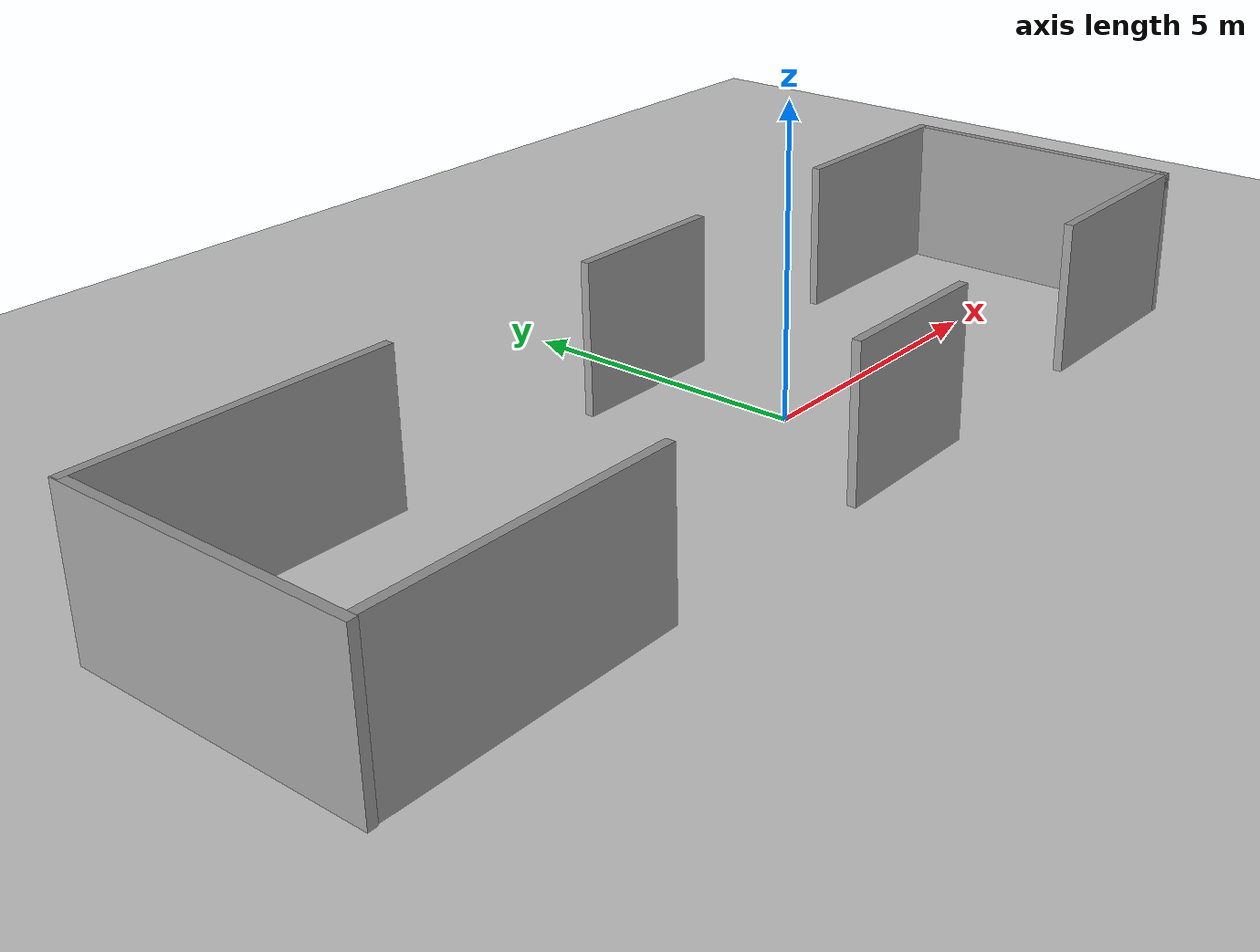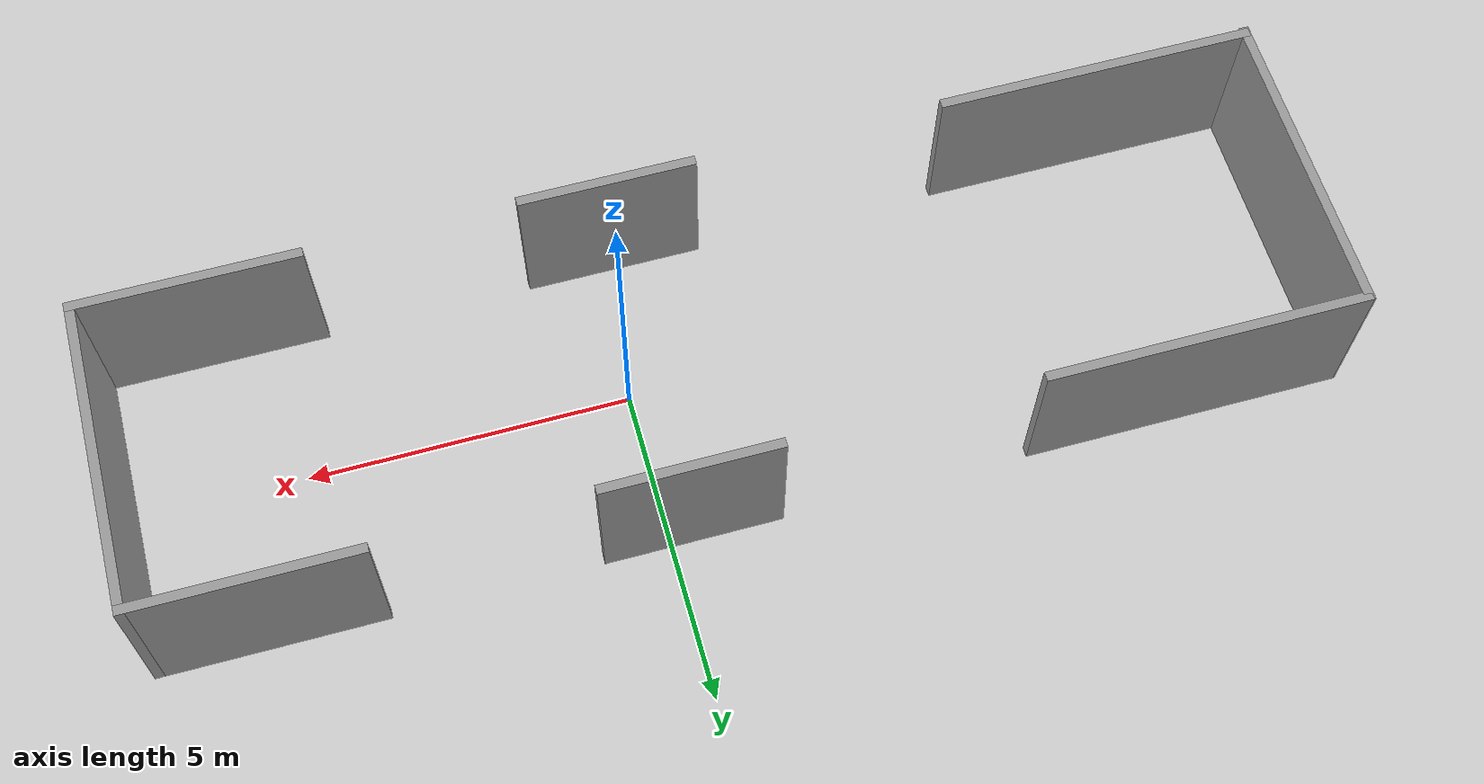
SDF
<sdf version="1.7">
 <world name="default">
  <light name="sun" type="directional">
   <pose>0 0 10 0 -0 0</pose>
   <diffuse>0.8 0.8 0.8 1</diffuse>
   <specular>0.2 0.2 0.2 1</specular>
   <attenuation>
    <range>1000</range>
    <constant>0.9</constant>
    <linear>0.01</linear>
    <quadratic>0.001</quadratic>
   </attenuation>
   <direction>-0.5 0.1 -0.9</direction>
   <spot><inner_angle>0</inner_angle><outer_angle>0</outer_angle><falloff>0</falloff></spot>
  </light>
  <model name="ground_plane">
   <static>1</static>
   <link name="link">
    <collision name="collision">
     <geometry><plane><normal>0 0 1</normal><size>100 100</size></plane></geometry>
     <surface>
      <contact><collide_bitmask>65535</collide_bitmask></contact>
      <friction><ode><mu>100</mu><mu2>50</mu2></ode></friction>
     </surface>
    </collision>
    <visual name="visual">
     <cast_shadows>0</cast_shadows>
     <geometry><plane><normal>0 0 1</normal><size>100 100</size></plane></geometry>
     <material>
      <script><uri>file://media/materials/scripts/gazebo.material</uri><name>Gazebo/Grey</name></script>
     </material>
    </visual>
   </link>
  </model>
  <gravity>0 0 -9.8</gravity>
  <magnetic_field>6e-06 2.3e-05 -4.2e-05</magnetic_field>
  <atmosphere type="adiabatic"/>
  <physics type="ode">
   <max_step_size>0.001</max_step_size>
   <real_time_factor>1</real_time_factor>
   <real_time_update_rate>1000</real_time_update_rate>
  </physics>
  <scene><ambient>0.4 0.4 0.4 1</ambient><background>0.7 0.7 0.7 1</background><shadows>1</shadows></scene>
  <spherical_coordinates>
   <surface_model>EARTH_WGS84</surface_model>
   <latitude_deg>0</latitude_deg>
   <longitude_deg>0</longitude_deg>
   <elevation>0</elevation>
   <heading_deg>0</heading_deg>
  </spherical_coordinates>
  <model name="Untitled">
   <pose>-1.42842 0.031631 0 0 -0 0</pose>
   <link name="Wall_10">
    <collision name="Wall_10_Collision">
     <geometry><box><size>3.5 0.15 2.5</size></box></geometry>
     <pose>0 0 1.25 0 -0 0</pose>
    </collision>
    <visual name="Wall_10_Visual">
     <pose>0 0 1.25 0 -0 0</pose>
     <geometry><box><size>3.5 0.15 2.5</size></box></geometry>
     <material>
      <script><uri>file://media/materials/scripts/gazebo.material</uri><name>Gazebo/Grey</name></script>
      <ambient>1 1 1 1</ambient>
     </material>
     <meta><layer>0</layer></meta>
    </visual>
    <pose>7.40396 -2.425 0 0 -0 0</pose>
   </link>
   <link name="Wall_11">
    <collision name="Wall_11_Collision">
     <geometry><box><size>5 0.15 2.5</size></box></geometry>
     <pose>0 0 1.25 0 -0 0</pose>
    </collision>
    <visual name="Wall_11_Visual">
     <pose>0 0 1.25 0 -0 0</pose>
     <geometry><box><size>5 0.15 2.5</size></box></geometry>
     <material>
      <script><uri>file://media/materials/scripts/gazebo.material</uri><name>Gazebo/Grey</name></script>
      <ambient>1 1 1 1</ambient>
     </material>
     <meta><layer>0</layer></meta>
    </visual>
    <pose>9.07896 0 0 0 -0 1.5708</pose>
   </link>
   <link name="Wall_12">
    <collision name="Wall_12_Collision">
     <geometry><box><size>3.5 0.15 2.5</size></box></geometry>
     <pose>0 0 1.25 0 -0 0</pose>
    </collision>
    <visual name="Wall_12_Visual">
     <pose>0 0 1.25 0 -0 0</pose>
     <geometry><box><size>3.5 0.15 2.5</size></box></geometry>
     <material>
      <script><uri>file://media/materials/scripts/gazebo.material</uri><name>Gazebo/Grey</name></script>
      <ambient>1 1 1 1</ambient>
     </material>
     <meta><layer>0</layer></meta>
    </visual>
    <pose>7.40396 2.425 0 0 -0 3.14159</pose>
   </link>
   <link name="Wall_15">
    <collision name="Wall_15_Collision">
     <geometry><box><size>5 0.15 2.5</size></box></geometry>
     <pose>0 0 1.25 0 -0 0</pose>
    </collision>
    <visual name="Wall_15_Visual">
     <pose>0 0 1.25 0 -0 0</pose>
     <geometry><box><size>5 0.15 2.5</size></box></geometry>
     <material>
      <script><uri>file://media/materials/scripts/gazebo.material</uri><name>Gazebo/Grey</name></script>
      <ambient>1 1 1 1</ambient>
     </material>
     <meta><layer>0</layer></meta>
    </visual>
    <pose>-6.63083 2.425 0 0 -0 3.14159</pose>
   </link>
   <link name="Wall_16">
    <collision name="Wall_16_Collision">
     <geometry><box><size>5 0.15 2.5</size></box></geometry>
     <pose>0 0 1.25 0 -0 0</pose>
    </collision>
    <visual name="Wall_16_Visual">
     <pose>0 0 1.25 0 -0 0</pose>
     <geometry><box><size>5 0.15 2.5</size></box></geometry>
     <material>
      <script><uri>file://media/materials/scripts/gazebo.material</uri><name>Gazebo/Grey</name></script>
      <ambient>1 1 1 1</ambient>
     </material>
     <meta><layer>0</layer></meta>
    </visual>
    <pose>-9.07896 0 0 0 -0 -1.5708</pose>
   </link>
   <link name="Wall_18">
    <collision name="Wall_18_Collision">
     <geometry><box><size>2.75 0.15 2.5</size></box></geometry>
     <pose>0 0 1.25 0 -0 0</pose>
    </collision>
    <visual name="Wall_18_Visual">
     <pose>0 0 1.25 0 -0 0</pose>
     <geometry><box><size>2.75 0.15 2.5</size></box></geometry>
     <material>
      <script><uri>file://media/materials/scripts/gazebo.material</uri><name>Gazebo/Grey</name></script>
      <ambient>1 1 1 1</ambient>
     </material>
     <meta><layer>0</layer></meta>
    </visual>
    <pose>1.07896 2.425 0 0 -0 3.14159</pose>
   </link>
   <link name="Wall_6">
    <collision name="Wall_6_Collision">
     <geometry><box><size>5 0.15 2.5</size></box></geometry>
     <pose>0 0 1.25 0 -0 0</pose>
    </collision>
    <visual name="Wall_6_Visual">
     <pose>0 0 1.25 0 -0 0</pose>
     <geometry><box><size>5 0.15 2.5</size></box></geometry>
     <material>
      <script><uri>file://media/materials/scripts/gazebo.material</uri><name>Gazebo/Grey</name></script>
      <ambient>1 1 1 1</ambient>
     </material>
     <meta><layer>0</layer></meta>
    </visual>
    <pose>-6.64175 -2.40187 0 0 -0 0</pose>
   </link>
   <link name="Wall_8">
    <collision name="Wall_8_Collision">
     <geometry><box><size>2.75 0.15 2.5</size></box></geometry>
     <pose>0 0 1.25 0 -0 0</pose>
    </collision>
    <visual name="Wall_8_Visual">
     <pose>0 0 1.25 0 -0 0</pose>
     <geometry><box><size>2.75 0.15 2.5</size></box></geometry>
     <material>
      <script><uri>file://media/materials/scripts/gazebo.material</uri><name>Gazebo/Grey</name></script>
      <ambient>1 1 1 1</ambient>
     </material>
     <meta><layer>0</layer></meta>
    </visual>
    <pose>1.07896 -2.425 0 0 -0 0</pose>
   </link>
   <static>1</static>
  </model>
 </world>
</sdf>
